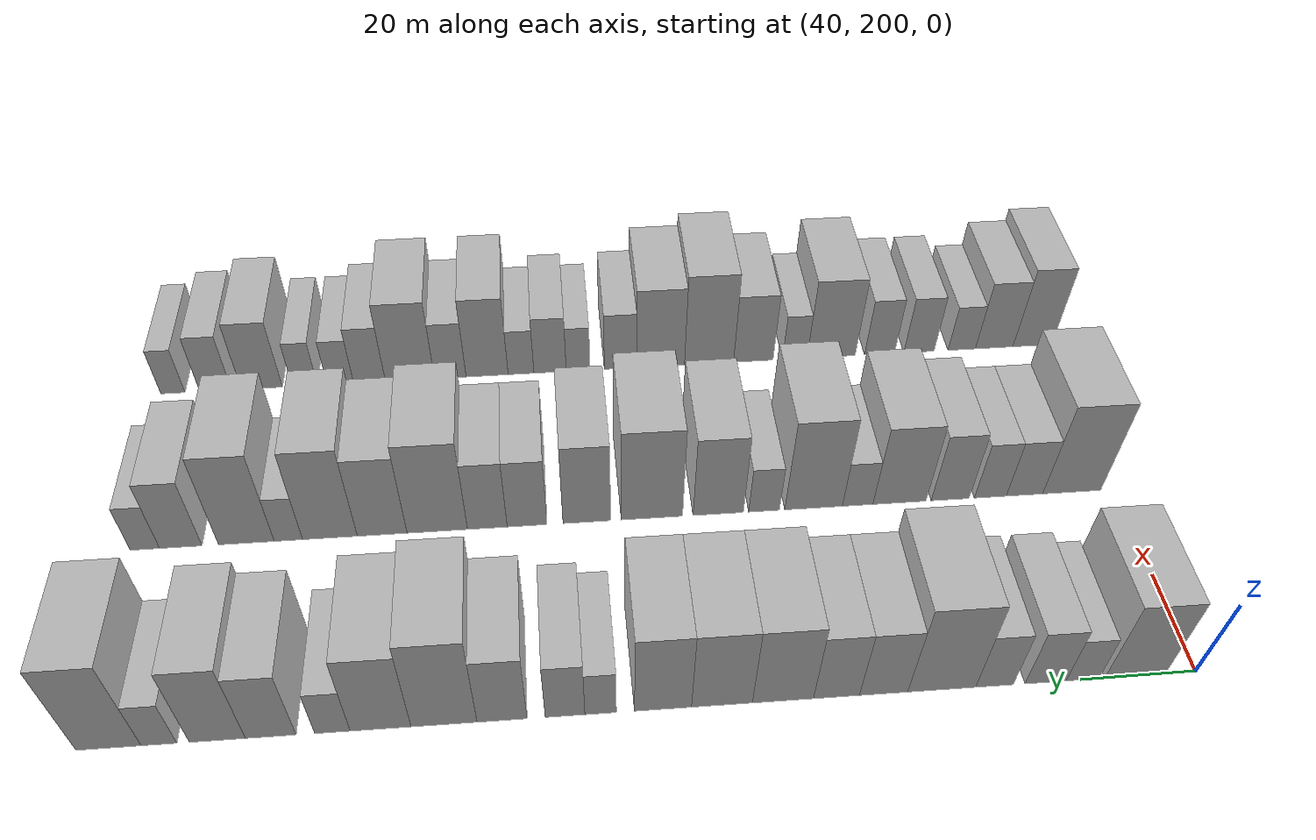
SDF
<sdf version="1.6">
 <world name="default">
  <model name="building_66">
   <static>1</static>
   <pose>50.0000 210.6346 0 0.000000 0.000000 0.000000</pose>
   <link name="link">
    <pose>0 0 10.50 0 0 0</pose>
    <collision name="collision"><geometry><box><size>20.0000 10.4875 21.0000</size></box></geometry></collision>
    <visual name="visual">
     <cast_shadows>0</cast_shadows>
     <geometry><box><size>20.0000 10.4875 21.0000</size></box></geometry>
     <material>
      <script>
       <uri>model://HANNAS_wall/materials/scripts</uri>
       <uri>model://HANNAS_wall/materials/textures</uri>
       <name>vrc/HANNAS_wall</name>
      </script>
     </material>
    </visual>
   </link>
  </model>
  <model name="building_67">
   <static>1</static>
   <pose>50.0000 219.7098 0 0.000000 0.000000 0.000000</pose>
   <link name="link">
    <pose>0 0 6.00 0 0 0</pose>
    <collision name="collision"><geometry><box><size>20.0000 5.6629 12.0000</size></box></geometry></collision>
    <visual name="visual">
     <cast_shadows>0</cast_shadows>
     <geometry><box><size>20.0000 5.6629 12.0000</size></box></geometry>
     <material>
      <script>
       <uri>model://HANNAS_wall/materials/scripts</uri>
       <uri>model://HANNAS_wall/materials/textures</uri>
       <name>vrc/HANNAS_wall</name>
      </script>
     </material>
    </visual>
   </link>
  </model>
  <model name="building_68">
   <static>1</static>
   <pose>50.0000 226.0787 0 0.000000 0.000000 0.000000</pose>
   <link name="link">
    <pose>0 0 7.50 0 0 0</pose>
    <collision name="collision"><geometry><box><size>20.0000 7.0749 15.0000</size></box></geometry></collision>
    <visual name="visual">
     <cast_shadows>0</cast_shadows>
     <geometry><box><size>20.0000 7.0749 15.0000</size></box></geometry>
     <material>
      <script>
       <uri>model://HANNAS_wall/materials/scripts</uri>
       <uri>model://HANNAS_wall/materials/textures</uri>
       <name>vrc/HANNAS_wall</name>
      </script>
     </material>
    </visual>
   </link>
  </model>
  <model name="building_69">
   <static>1</static>
   <pose>50.0000 234.8406 0 0.000000 0.000000 0.000000</pose>
   <link name="link">
    <pose>0 0 7.50 0 0 0</pose>
    <collision name="collision"><geometry><box><size>20.0000 6.4490 15.0000</size></box></geometry></collision>
    <visual name="visual">
     <cast_shadows>0</cast_shadows>
     <geometry><box><size>20.0000 6.4490 15.0000</size></box></geometry>
     <material>
      <script>
       <uri>model://HANNAS_wall/materials/scripts</uri>
       <uri>model://HANNAS_wall/materials/textures</uri>
       <name>vrc/HANNAS_wall</name>
      </script>
     </material>
    </visual>
   </link>
  </model>
  <model name="building_70">
   <static>1</static>
   <pose>50.0000 243.8585 0 0.000000 0.000000 0.000000</pose>
   <link name="link">
    <pose>0 0 12.00 0 0 0</pose>
    <collision name="collision"><geometry><box><size>20.0000 11.5869 24.0000</size></box></geometry></collision>
    <visual name="visual">
     <cast_shadows>0</cast_shadows>
     <geometry><box><size>20.0000 11.5869 24.0000</size></box></geometry>
     <material>
      <script>
       <uri>model://HANNAS_wall/materials/scripts</uri>
       <uri>model://HANNAS_wall/materials/textures</uri>
       <name>vrc/HANNAS_wall</name>
      </script>
     </material>
    </visual>
   </link>
  </model>
  <model name="building_71">
   <static>1</static>
   <pose>50.0000 253.7361 0 0.000000 0.000000 0.000000</pose>
   <link name="link">
    <pose>0 0 9.00 0 0 0</pose>
    <collision name="collision"><geometry><box><size>20.0000 8.1681 18.0000</size></box></geometry></collision>
    <visual name="visual">
     <cast_shadows>0</cast_shadows>
     <geometry><box><size>20.0000 8.1681 18.0000</size></box></geometry>
     <material>
      <script>
       <uri>model://HANNAS_wall/materials/scripts</uri>
       <uri>model://HANNAS_wall/materials/textures</uri>
       <name>vrc/HANNAS_wall</name>
      </script>
     </material>
    </visual>
   </link>
  </model>
  <model name="building_72">
   <static>1</static>
   <pose>50.0000 261.6974 0 0.000000 0.000000 0.000000</pose>
   <link name="link">
    <pose>0 0 9.00 0 0 0</pose>
    <collision name="collision"><geometry><box><size>20.0000 7.7546 18.0000</size></box></geometry></collision>
    <visual name="visual">
     <cast_shadows>0</cast_shadows>
     <geometry><box><size>20.0000 7.7546 18.0000</size></box></geometry>
     <material>
      <script>
       <uri>model://HANNAS_wall/materials/scripts</uri>
       <uri>model://HANNAS_wall/materials/textures</uri>
       <name>vrc/HANNAS_wall</name>
      </script>
     </material>
    </visual>
   </link>
  </model>
  <model name="building_73">
   <static>1</static>
   <pose>50.0000 270.7073 0 0.000000 0.000000 0.000000</pose>
   <link name="link">
    <pose>0 0 10.50 0 0 0</pose>
    <collision name="collision"><geometry><box><size>20.0000 10.2651 21.0000</size></box></geometry></collision>
    <visual name="visual">
     <cast_shadows>0</cast_shadows>
     <geometry><box><size>20.0000 10.2651 21.0000</size></box></geometry>
     <material>
      <script>
       <uri>model://HANNAS_wall/materials/scripts</uri>
       <uri>model://HANNAS_wall/materials/textures</uri>
       <name>vrc/HANNAS_wall</name>
      </script>
     </material>
    </visual>
   </link>
  </model>
  <model name="building_74">
   <static>1</static>
   <pose>50.0000 280.9217 0 0.000000 0.000000 0.000000</pose>
   <link name="link">
    <pose>0 0 10.50 0 0 0</pose>
    <collision name="collision"><geometry><box><size>20.0000 10.1638 21.0000</size></box></geometry></collision>
    <visual name="visual">
     <cast_shadows>0</cast_shadows>
     <geometry><box><size>20.0000 10.1638 21.0000</size></box></geometry>
     <material>
      <script>
       <uri>model://HANNAS_wall/materials/scripts</uri>
       <uri>model://HANNAS_wall/materials/textures</uri>
       <name>vrc/HANNAS_wall</name>
      </script>
     </material>
    </visual>
   </link>
  </model>
  <model name="building_75">
   <static>1</static>
   <pose>50.0000 290.7441 0 0.000000 0.000000 0.000000</pose>
   <link name="link">
    <pose>0 0 10.50 0 0 0</pose>
    <collision name="collision"><geometry><box><size>20.0000 9.4809 21.0000</size></box></geometry></collision>
    <visual name="visual">
     <cast_shadows>0</cast_shadows>
     <geometry><box><size>20.0000 9.4809 21.0000</size></box></geometry>
     <material>
      <script>
       <uri>model://HANNAS_wall/materials/scripts</uri>
       <uri>model://HANNAS_wall/materials/textures</uri>
       <name>vrc/HANNAS_wall</name>
      </script>
     </material>
    </visual>
   </link>
  </model>
  <model name="building_76">
   <static>1</static>
   <pose>50.0000 301.0899 0 0.000000 0.000000 0.000000</pose>
   <link name="link">
    <pose>0 0 6.00 0 0 0</pose>
    <collision name="collision"><geometry><box><size>20.0000 5.2107 12.0000</size></box></geometry></collision>
    <visual name="visual">
     <cast_shadows>0</cast_shadows>
     <geometry><box><size>20.0000 5.2107 12.0000</size></box></geometry>
     <material>
      <script>
       <uri>model://HANNAS_wall/materials/scripts</uri>
       <uri>model://HANNAS_wall/materials/textures</uri>
       <name>vrc/HANNAS_wall</name>
      </script>
     </material>
    </visual>
   </link>
  </model>
  <model name="building_77">
   <static>1</static>
   <pose>50.0000 306.9525 0 0.000000 0.000000 0.000000</pose>
   <link name="link">
    <pose>0 0 7.50 0 0 0</pose>
    <collision name="collision"><geometry><box><size>20.0000 6.5145 15.0000</size></box></geometry></collision>
    <visual name="visual">
     <cast_shadows>0</cast_shadows>
     <geometry><box><size>20.0000 6.5145 15.0000</size></box></geometry>
     <material>
      <script>
       <uri>model://HANNAS_wall/materials/scripts</uri>
       <uri>model://HANNAS_wall/materials/textures</uri>
       <name>vrc/HANNAS_wall</name>
      </script>
     </material>
    </visual>
   </link>
  </model>
  <model name="building_78">
   <static>1</static>
   <pose>50.0000 317.3073 0 0.000000 0.000000 0.000000</pose>
   <link name="link">
    <pose>0 0 9.00 0 0 0</pose>
    <collision name="collision"><geometry><box><size>20.0000 8.1949 18.0000</size></box></geometry></collision>
    <visual name="visual">
     <cast_shadows>0</cast_shadows>
     <geometry><box><size>20.0000 8.1949 18.0000</size></box></geometry>
     <material>
      <script>
       <uri>model://HANNAS_wall/materials/scripts</uri>
       <uri>model://HANNAS_wall/materials/textures</uri>
       <name>vrc/HANNAS_wall</name>
      </script>
     </material>
    </visual>
   </link>
  </model>
  <model name="building_79">
   <static>1</static>
   <pose>50.0000 326.7852 0 0.000000 0.000000 0.000000</pose>
   <link name="link">
    <pose>0 0 12.00 0 0 0</pose>
    <collision name="collision"><geometry><box><size>20.0000 10.7609 24.0000</size></box></geometry></collision>
    <visual name="visual">
     <cast_shadows>0</cast_shadows>
     <geometry><box><size>20.0000 10.7609 24.0000</size></box></geometry>
     <material>
      <script>
       <uri>model://HANNAS_wall/materials/scripts</uri>
       <uri>model://HANNAS_wall/materials/textures</uri>
       <name>vrc/HANNAS_wall</name>
      </script>
     </material>
    </visual>
   </link>
  </model>
  <model name="building_80">
   <static>1</static>
   <pose>50.0000 337.1063 0 0.000000 0.000000 0.000000</pose>
   <link name="link">
    <pose>0 0 10.50 0 0 0</pose>
    <collision name="collision"><geometry><box><size>20.0000 9.8814 21.0000</size></box></geometry></collision>
    <visual name="visual">
     <cast_shadows>0</cast_shadows>
     <geometry><box><size>20.0000 9.8814 21.0000</size></box></geometry>
     <material>
      <script>
       <uri>model://HANNAS_wall/materials/scripts</uri>
       <uri>model://HANNAS_wall/materials/textures</uri>
       <name>vrc/HANNAS_wall</name>
      </script>
     </material>
    </visual>
   </link>
  </model>
  <model name="building_81">
   <static>1</static>
   <pose>50.0000 344.9108 0 0.000000 0.000000 0.000000</pose>
   <link name="link">
    <pose>0 0 6.00 0 0 0</pose>
    <collision name="collision"><geometry><box><size>20.0000 5.7277 12.0000</size></box></geometry></collision>
    <visual name="visual">
     <cast_shadows>0</cast_shadows>
     <geometry><box><size>20.0000 5.7277 12.0000</size></box></geometry>
     <material>
      <script>
       <uri>model://HANNAS_wall/materials/scripts</uri>
       <uri>model://HANNAS_wall/materials/textures</uri>
       <name>vrc/HANNAS_wall</name>
      </script>
     </material>
    </visual>
   </link>
  </model>
  <model name="building_82">
   <static>1</static>
   <pose>50.0000 354.8287 0 0.000000 0.000000 0.000000</pose>
   <link name="link">
    <pose>0 0 9.00 0 0 0</pose>
    <collision name="collision"><geometry><box><size>20.0000 8.1081 18.0000</size></box></geometry></collision>
    <visual name="visual">
     <cast_shadows>0</cast_shadows>
     <geometry><box><size>20.0000 8.1081 18.0000</size></box></geometry>
     <material>
      <script>
       <uri>model://HANNAS_wall/materials/scripts</uri>
       <uri>model://HANNAS_wall/materials/textures</uri>
       <name>vrc/HANNAS_wall</name>
      </script>
     </material>
    </visual>
   </link>
  </model>
  <model name="building_83">
   <static>1</static>
   <pose>50.0000 363.3851 0 0.000000 0.000000 0.000000</pose>
   <link name="link">
    <pose>0 0 10.50 0 0 0</pose>
    <collision name="collision"><geometry><box><size>20.0000 9.0046 21.0000</size></box></geometry></collision>
    <visual name="visual">
     <cast_shadows>0</cast_shadows>
     <geometry><box><size>20.0000 9.0046 21.0000</size></box></geometry>
     <material>
      <script>
       <uri>model://HANNAS_wall/materials/scripts</uri>
       <uri>model://HANNAS_wall/materials/textures</uri>
       <name>vrc/HANNAS_wall</name>
      </script>
     </material>
    </visual>
   </link>
  </model>
  <model name="building_84">
   <static>1</static>
   <pose>50.0000 372.7267 0 0.000000 0.000000 0.000000</pose>
   <link name="link">
    <pose>0 0 6.00 0 0 0</pose>
    <collision name="collision"><geometry><box><size>20.0000 5.6787 12.0000</size></box></geometry></collision>
    <visual name="visual">
     <cast_shadows>0</cast_shadows>
     <geometry><box><size>20.0000 5.6787 12.0000</size></box></geometry>
     <material>
      <script>
       <uri>model://HANNAS_wall/materials/scripts</uri>
       <uri>model://HANNAS_wall/materials/textures</uri>
       <name>vrc/HANNAS_wall</name>
      </script>
     </material>
    </visual>
   </link>
  </model>
  <model name="building_85">
   <static>1</static>
   <pose>50.0000 380.7363 0 0.000000 0.000000 0.000000</pose>
   <link name="link">
    <pose>0 0 12.00 0 0 0</pose>
    <collision name="collision"><geometry><box><size>20.0000 10.3403 24.0000</size></box></geometry></collision>
    <visual name="visual">
     <cast_shadows>0</cast_shadows>
     <geometry><box><size>20.0000 10.3403 24.0000</size></box></geometry>
     <material>
      <script>
       <uri>model://HANNAS_wall/materials/scripts</uri>
       <uri>model://HANNAS_wall/materials/textures</uri>
       <name>vrc/HANNAS_wall</name>
      </script>
     </material>
    </visual>
   </link>
  </model>
  <model name="building_150">
   <static>1</static>
   <pose>90.0000 208.3253 0 0.000000 0.000000 0.000000</pose>
   <link name="link">
    <pose>0 0 12.00 0 0 0</pose>
    <collision name="collision"><geometry><box><size>20.0000 11.3460 24.0000</size></box></geometry></collision>
    <visual name="visual">
     <cast_shadows>0</cast_shadows>
     <geometry><box><size>20.0000 11.3460 24.0000</size></box></geometry>
     <material>
      <script>
       <uri>model://HANNAS_wall/materials/scripts</uri>
       <uri>model://HANNAS_wall/materials/textures</uri>
       <name>vrc/HANNAS_wall</name>
      </script>
     </material>
    </visual>
   </link>
  </model>
  <model name="building_151">
   <static>1</static>
   <pose>90.0000 217.5371 0 0.000000 0.000000 0.000000</pose>
   <link name="link">
    <pose>0 0 7.50 0 0 0</pose>
    <collision name="collision"><geometry><box><size>20.0000 7.0777 15.0000</size></box></geometry></collision>
    <visual name="visual">
     <cast_shadows>0</cast_shadows>
     <geometry><box><size>20.0000 7.0777 15.0000</size></box></geometry>
     <material>
      <script>
       <uri>model://HANNAS_wall/materials/scripts</uri>
       <uri>model://HANNAS_wall/materials/textures</uri>
       <name>vrc/HANNAS_wall</name>
      </script>
     </material>
    </visual>
   </link>
  </model>
  <model name="building_152">
   <static>1</static>
   <pose>90.0000 224.1730 0 0.000000 0.000000 0.000000</pose>
   <link name="link">
    <pose>0 0 7.50 0 0 0</pose>
    <collision name="collision"><geometry><box><size>20.0000 6.1941 15.0000</size></box></geometry></collision>
    <visual name="visual">
     <cast_shadows>0</cast_shadows>
     <geometry><box><size>20.0000 6.1941 15.0000</size></box></geometry>
     <material>
      <script>
       <uri>model://HANNAS_wall/materials/scripts</uri>
       <uri>model://HANNAS_wall/materials/textures</uri>
       <name>vrc/HANNAS_wall</name>
      </script>
     </material>
    </visual>
   </link>
  </model>
  <model name="building_153">
   <static>1</static>
   <pose>90.0000 231.9447 0 0.000000 0.000000 0.000000</pose>
   <link name="link">
    <pose>0 0 9.00 0 0 0</pose>
    <collision name="collision"><geometry><box><size>20.0000 7.3492 18.0000</size></box></geometry></collision>
    <visual name="visual">
     <cast_shadows>0</cast_shadows>
     <geometry><box><size>20.0000 7.3492 18.0000</size></box></geometry>
     <material>
      <script>
       <uri>model://HANNAS_wall/materials/scripts</uri>
       <uri>model://HANNAS_wall/materials/textures</uri>
       <name>vrc/HANNAS_wall</name>
      </script>
     </material>
    </visual>
   </link>
  </model>
  <model name="building_154">
   <static>1</static>
   <pose>90.0000 241.7229 0 0.000000 0.000000 0.000000</pose>
   <link name="link">
    <pose>0 0 10.50 0 0 0</pose>
    <collision name="collision"><geometry><box><size>20.0000 10.2072 21.0000</size></box></geometry></collision>
    <visual name="visual">
     <cast_shadows>0</cast_shadows>
     <geometry><box><size>20.0000 10.2072 21.0000</size></box></geometry>
     <material>
      <script>
       <uri>model://HANNAS_wall/materials/scripts</uri>
       <uri>model://HANNAS_wall/materials/textures</uri>
       <name>vrc/HANNAS_wall</name>
      </script>
     </material>
    </visual>
   </link>
  </model>
  <model name="building_155">
   <static>1</static>
   <pose>90.0000 249.7575 0 0.000000 0.000000 0.000000</pose>
   <link name="link">
    <pose>0 0 6.00 0 0 0</pose>
    <collision name="collision"><geometry><box><size>20.0000 5.8620 12.0000</size></box></geometry></collision>
    <visual name="visual">
     <cast_shadows>0</cast_shadows>
     <geometry><box><size>20.0000 5.8620 12.0000</size></box></geometry>
     <material>
      <script>
       <uri>model://HANNAS_wall/materials/scripts</uri>
       <uri>model://HANNAS_wall/materials/textures</uri>
       <name>vrc/HANNAS_wall</name>
      </script>
     </material>
    </visual>
   </link>
  </model>
  <model name="building_156">
   <static>1</static>
   <pose>90.0000 258.1956 0 0.000000 0.000000 0.000000</pose>
   <link name="link">
    <pose>0 0 12.00 0 0 0</pose>
    <collision name="collision"><geometry><box><size>20.0000 11.0141 24.0000</size></box></geometry></collision>
    <visual name="visual">
     <cast_shadows>0</cast_shadows>
     <geometry><box><size>20.0000 11.0141 24.0000</size></box></geometry>
     <material>
      <script>
       <uri>model://HANNAS_wall/materials/scripts</uri>
       <uri>model://HANNAS_wall/materials/textures</uri>
       <name>vrc/HANNAS_wall</name>
      </script>
     </material>
    </visual>
   </link>
  </model>
  <model name="building_157">
   <static>1</static>
   <pose>90.0000 267.6344 0 0.000000 0.000000 0.000000</pose>
   <link name="link">
    <pose>0 0 6.00 0 0 0</pose>
    <collision name="collision"><geometry><box><size>20.0000 5.8636 12.0000</size></box></geometry></collision>
    <visual name="visual">
     <cast_shadows>0</cast_shadows>
     <geometry><box><size>20.0000 5.8636 12.0000</size></box></geometry>
     <material>
      <script>
       <uri>model://HANNAS_wall/materials/scripts</uri>
       <uri>model://HANNAS_wall/materials/textures</uri>
       <name>vrc/HANNAS_wall</name>
      </script>
     </material>
    </visual>
   </link>
  </model>
  <model name="building_158">
   <static>1</static>
   <pose>90.0000 276.3266 0 0.000000 0.000000 0.000000</pose>
   <link name="link">
    <pose>0 0 10.50 0 0 0</pose>
    <collision name="collision"><geometry><box><size>20.0000 9.5206 21.0000</size></box></geometry></collision>
    <visual name="visual">
     <cast_shadows>0</cast_shadows>
     <geometry><box><size>20.0000 9.5206 21.0000</size></box></geometry>
     <material>
      <script>
       <uri>model://HANNAS_wall/materials/scripts</uri>
       <uri>model://HANNAS_wall/materials/textures</uri>
       <name>vrc/HANNAS_wall</name>
      </script>
     </material>
    </visual>
   </link>
  </model>
  <model name="building_159">
   <static>1</static>
   <pose>90.0000 288.8502 0 0.000000 0.000000 0.000000</pose>
   <link name="link">
    <pose>0 0 12.00 0 0 0</pose>
    <collision name="collision"><geometry><box><size>20.0000 11.5267 24.0000</size></box></geometry></collision>
    <visual name="visual">
     <cast_shadows>0</cast_shadows>
     <geometry><box><size>20.0000 11.5267 24.0000</size></box></geometry>
     <material>
      <script>
       <uri>model://HANNAS_wall/materials/scripts</uri>
       <uri>model://HANNAS_wall/materials/textures</uri>
       <name>vrc/HANNAS_wall</name>
      </script>
     </material>
    </visual>
   </link>
  </model>
  <model name="building_160">
   <static>1</static>
   <pose>90.0000 301.0694 0 0.000000 0.000000 0.000000</pose>
   <link name="link">
    <pose>0 0 10.50 0 0 0</pose>
    <collision name="collision"><geometry><box><size>20.0000 8.9117 21.0000</size></box></geometry></collision>
    <visual name="visual">
     <cast_shadows>0</cast_shadows>
     <geometry><box><size>20.0000 8.9117 21.0000</size></box></geometry>
     <material>
      <script>
       <uri>model://HANNAS_wall/materials/scripts</uri>
       <uri>model://HANNAS_wall/materials/textures</uri>
       <name>vrc/HANNAS_wall</name>
      </script>
     </material>
    </visual>
   </link>
  </model>
  <model name="building_161">
   <static>1</static>
   <pose>90.0000 312.2325 0 0.000000 0.000000 0.000000</pose>
   <link name="link">
    <pose>0 0 9.00 0 0 0</pose>
    <collision name="collision"><geometry><box><size>20.0000 7.4145 18.0000</size></box></geometry></collision>
    <visual name="visual">
     <cast_shadows>0</cast_shadows>
     <geometry><box><size>20.0000 7.4145 18.0000</size></box></geometry>
     <material>
      <script>
       <uri>model://HANNAS_wall/materials/scripts</uri>
       <uri>model://HANNAS_wall/materials/textures</uri>
       <name>vrc/HANNAS_wall</name>
      </script>
     </material>
    </visual>
   </link>
  </model>
  <model name="building_162">
   <static>1</static>
   <pose>90.0000 319.6227 0 0.000000 0.000000 0.000000</pose>
   <link name="link">
    <pose>0 0 9.00 0 0 0</pose>
    <collision name="collision"><geometry><box><size>20.0000 7.3660 18.0000</size></box></geometry></collision>
    <visual name="visual">
     <cast_shadows>0</cast_shadows>
     <geometry><box><size>20.0000 7.3660 18.0000</size></box></geometry>
     <material>
      <script>
       <uri>model://HANNAS_wall/materials/scripts</uri>
       <uri>model://HANNAS_wall/materials/textures</uri>
       <name>vrc/HANNAS_wall</name>
      </script>
     </material>
    </visual>
   </link>
  </model>
  <model name="building_163">
   <static>1</static>
   <pose>90.0000 328.8922 0 0.000000 0.000000 0.000000</pose>
   <link name="link">
    <pose>0 0 12.00 0 0 0</pose>
    <collision name="collision"><geometry><box><size>20.0000 11.1730 24.0000</size></box></geometry></collision>
    <visual name="visual">
     <cast_shadows>0</cast_shadows>
     <geometry><box><size>20.0000 11.1730 24.0000</size></box></geometry>
     <material>
      <script>
       <uri>model://HANNAS_wall/materials/scripts</uri>
       <uri>model://HANNAS_wall/materials/textures</uri>
       <name>vrc/HANNAS_wall</name>
      </script>
     </material>
    </visual>
   </link>
  </model>
  <model name="building_164">
   <static>1</static>
   <pose>90.0000 339.0551 0 0.000000 0.000000 0.000000</pose>
   <link name="link">
    <pose>0 0 10.50 0 0 0</pose>
    <collision name="collision"><geometry><box><size>20.0000 9.1526 21.0000</size></box></geometry></collision>
    <visual name="visual">
     <cast_shadows>0</cast_shadows>
     <geometry><box><size>20.0000 9.1526 21.0000</size></box></geometry>
     <material>
      <script>
       <uri>model://HANNAS_wall/materials/scripts</uri>
       <uri>model://HANNAS_wall/materials/textures</uri>
       <name>vrc/HANNAS_wall</name>
      </script>
     </material>
    </visual>
   </link>
  </model>
  <model name="building_165">
   <static>1</static>
   <pose>90.0000 348.6371 0 0.000000 0.000000 0.000000</pose>
   <link name="link">
    <pose>0 0 12.00 0 0 0</pose>
    <collision name="collision"><geometry><box><size>20.0000 10.0115 24.0000</size></box></geometry></collision>
    <visual name="visual">
     <cast_shadows>0</cast_shadows>
     <geometry><box><size>20.0000 10.0115 24.0000</size></box></geometry>
     <material>
      <script>
       <uri>model://HANNAS_wall/materials/scripts</uri>
       <uri>model://HANNAS_wall/materials/textures</uri>
       <name>vrc/HANNAS_wall</name>
      </script>
     </material>
    </visual>
   </link>
  </model>
  <model name="building_166">
   <static>1</static>
   <pose>90.0000 356.2366 0 0.000000 0.000000 0.000000</pose>
   <link name="link">
    <pose>0 0 6.00 0 0 0</pose>
    <collision name="collision"><geometry><box><size>20.0000 5.1875 12.0000</size></box></geometry></collision>
    <visual name="visual">
     <cast_shadows>0</cast_shadows>
     <geometry><box><size>20.0000 5.1875 12.0000</size></box></geometry>
     <material>
      <script>
       <uri>model://HANNAS_wall/materials/scripts</uri>
       <uri>model://HANNAS_wall/materials/textures</uri>
       <name>vrc/HANNAS_wall</name>
      </script>
     </material>
    </visual>
   </link>
  </model>
  <model name="building_167">
   <static>1</static>
   <pose>90.0000 363.9018 0 0.000000 0.000000 0.000000</pose>
   <link name="link">
    <pose>0 0 12.00 0 0 0</pose>
    <collision name="collision"><geometry><box><size>20.0000 10.1429 24.0000</size></box></geometry></collision>
    <visual name="visual">
     <cast_shadows>0</cast_shadows>
     <geometry><box><size>20.0000 10.1429 24.0000</size></box></geometry>
     <material>
      <script>
       <uri>model://HANNAS_wall/materials/scripts</uri>
       <uri>model://HANNAS_wall/materials/textures</uri>
       <name>vrc/HANNAS_wall</name>
      </script>
     </material>
    </visual>
   </link>
  </model>
  <model name="building_168">
   <static>1</static>
   <pose>90.0000 375.8147 0 0.000000 0.000000 0.000000</pose>
   <link name="link">
    <pose>0 0 9.00 0 0 0</pose>
    <collision name="collision"><geometry><box><size>20.0000 7.6829 18.0000</size></box></geometry></collision>
    <visual name="visual">
     <cast_shadows>0</cast_shadows>
     <geometry><box><size>20.0000 7.6829 18.0000</size></box></geometry>
     <material>
      <script>
       <uri>model://HANNAS_wall/materials/scripts</uri>
       <uri>model://HANNAS_wall/materials/textures</uri>
       <name>vrc/HANNAS_wall</name>
      </script>
     </material>
    </visual>
   </link>
  </model>
  <model name="building_169">
   <static>1</static>
   <pose>90.0000 382.2963 0 0.000000 0.000000 0.000000</pose>
   <link name="link">
    <pose>0 0 6.00 0 0 0</pose>
    <collision name="collision"><geometry><box><size>20.0000 5.2803 12.0000</size></box></geometry></collision>
    <visual name="visual">
     <cast_shadows>0</cast_shadows>
     <geometry><box><size>20.0000 5.2803 12.0000</size></box></geometry>
     <material>
      <script>
       <uri>model://HANNAS_wall/materials/scripts</uri>
       <uri>model://HANNAS_wall/materials/textures</uri>
       <name>vrc/HANNAS_wall</name>
      </script>
     </material>
    </visual>
   </link>
  </model>
  <model name="building_231">
   <static>1</static>
   <pose>130.0000 203.6872 0 0.000000 0.000000 0.000000</pose>
   <link name="link">
    <pose>0 0 10.50 0 0 0</pose>
    <collision name="collision"><geometry><box><size>20.0000 8.4527 21.0000</size></box></geometry></collision>
    <visual name="visual">
     <cast_shadows>0</cast_shadows>
     <geometry><box><size>20.0000 8.4527 21.0000</size></box></geometry>
     <material>
      <script>
       <uri>model://HANNAS_wall/materials/scripts</uri>
       <uri>model://HANNAS_wall/materials/textures</uri>
       <name>vrc/HANNAS_wall</name>
      </script>
     </material>
    </visual>
   </link>
  </model>
  <model name="building_232">
   <static>1</static>
   <pose>130.0000 211.9759 0 0.000000 0.000000 0.000000</pose>
   <link name="link">
    <pose>0 0 9.00 0 0 0</pose>
    <collision name="collision"><geometry><box><size>20.0000 8.1248 18.0000</size></box></geometry></collision>
    <visual name="visual">
     <cast_shadows>0</cast_shadows>
     <geometry><box><size>20.0000 8.1248 18.0000</size></box></geometry>
     <material>
      <script>
       <uri>model://HANNAS_wall/materials/scripts</uri>
       <uri>model://HANNAS_wall/materials/textures</uri>
       <name>vrc/HANNAS_wall</name>
      </script>
     </material>
    </visual>
   </link>
  </model>
  <model name="building_233">
   <static>1</static>
   <pose>130.0000 218.9965 0 0.000000 0.000000 0.000000</pose>
   <link name="link">
    <pose>0 0 6.00 0 0 0</pose>
    <collision name="collision"><geometry><box><size>20.0000 5.9165 12.0000</size></box></geometry></collision>
    <visual name="visual">
     <cast_shadows>0</cast_shadows>
     <geometry><box><size>20.0000 5.9165 12.0000</size></box></geometry>
     <material>
      <script>
       <uri>model://HANNAS_wall/materials/scripts</uri>
       <uri>model://HANNAS_wall/materials/textures</uri>
       <name>vrc/HANNAS_wall</name>
      </script>
     </material>
    </visual>
   </link>
  </model>
  <model name="building_234">
   <static>1</static>
   <pose>130.0000 228.2255 0 0.000000 0.000000 0.000000</pose>
   <link name="link">
    <pose>0 0 7.50 0 0 0</pose>
    <collision name="collision"><geometry><box><size>20.0000 6.5415 15.0000</size></box></geometry></collision>
    <visual name="visual">
     <cast_shadows>0</cast_shadows>
     <geometry><box><size>20.0000 6.5415 15.0000</size></box></geometry>
     <material>
      <script>
       <uri>model://HANNAS_wall/materials/scripts</uri>
       <uri>model://HANNAS_wall/materials/textures</uri>
       <name>vrc/HANNAS_wall</name>
      </script>
     </material>
    </visual>
   </link>
  </model>
  <model name="building_235">
   <static>1</static>
   <pose>130.0000 236.7145 0 0.000000 0.000000 0.000000</pose>
   <link name="link">
    <pose>0 0 7.50 0 0 0</pose>
    <collision name="collision"><geometry><box><size>20.0000 6.4365 15.0000</size></box></geometry></collision>
    <visual name="visual">
     <cast_shadows>0</cast_shadows>
     <geometry><box><size>20.0000 6.4365 15.0000</size></box></geometry>
     <material>
      <script>
       <uri>model://HANNAS_wall/materials/scripts</uri>
       <uri>model://HANNAS_wall/materials/textures</uri>
       <name>vrc/HANNAS_wall</name>
      </script>
     </material>
    </visual>
   </link>
  </model>
  <model name="building_236">
   <static>1</static>
   <pose>130.0000 247.0980 0 0.000000 0.000000 0.000000</pose>
   <link name="link">
    <pose>0 0 10.50 0 0 0</pose>
    <collision name="collision"><geometry><box><size>20.0000 10.3305 21.0000</size></box></geometry></collision>
    <visual name="visual">
     <cast_shadows>0</cast_shadows>
     <geometry><box><size>20.0000 10.3305 21.0000</size></box></geometry>
     <material>
      <script>
       <uri>model://HANNAS_wall/materials/scripts</uri>
       <uri>model://HANNAS_wall/materials/textures</uri>
       <name>vrc/HANNAS_wall</name>
      </script>
     </material>
    </visual>
   </link>
  </model>
  <model name="building_237">
   <static>1</static>
   <pose>130.0000 254.8758 0 0.000000 0.000000 0.000000</pose>
   <link name="link">
    <pose>0 0 6.00 0 0 0</pose>
    <collision name="collision"><geometry><box><size>20.0000 5.2250 12.0000</size></box></geometry></collision>
    <visual name="visual">
     <cast_shadows>0</cast_shadows>
     <geometry><box><size>20.0000 5.2250 12.0000</size></box></geometry>
     <material>
      <script>
       <uri>model://HANNAS_wall/materials/scripts</uri>
       <uri>model://HANNAS_wall/materials/textures</uri>
       <name>vrc/HANNAS_wall</name>
      </script>
     </material>
    </visual>
   </link>
  </model>
  <model name="building_238">
   <static>1</static>
   <pose>130.0000 263.6788 0 0.000000 0.000000 0.000000</pose>
   <link name="link">
    <pose>0 0 9.00 0 0 0</pose>
    <collision name="collision"><geometry><box><size>20.0000 8.3811 18.0000</size></box></geometry></collision>
    <visual name="visual">
     <cast_shadows>0</cast_shadows>
     <geometry><box><size>20.0000 8.3811 18.0000</size></box></geometry>
     <material>
      <script>
       <uri>model://HANNAS_wall/materials/scripts</uri>
       <uri>model://HANNAS_wall/materials/textures</uri>
       <name>vrc/HANNAS_wall</name>
      </script>
     </material>
    </visual>
   </link>
  </model>
  <model name="building_239">
   <static>1</static>
   <pose>130.0000 273.0698 0 0.000000 0.000000 0.000000</pose>
   <link name="link">
    <pose>0 0 12.00 0 0 0</pose>
    <collision name="collision"><geometry><box><size>20.0000 10.4010 24.0000</size></box></geometry></collision>
    <visual name="visual">
     <cast_shadows>0</cast_shadows>
     <geometry><box><size>20.0000 10.4010 24.0000</size></box></geometry>
     <material>
      <script>
       <uri>model://HANNAS_wall/materials/scripts</uri>
       <uri>model://HANNAS_wall/materials/textures</uri>
       <name>vrc/HANNAS_wall</name>
      </script>
     </material>
    </visual>
   </link>
  </model>
  <model name="building_240">
   <static>1</static>
   <pose>130.0000 283.3175 0 0.000000 0.000000 0.000000</pose>
   <link name="link">
    <pose>0 0 10.50 0 0 0</pose>
    <collision name="collision"><geometry><box><size>20.0000 10.0944 21.0000</size></box></geometry></collision>
    <visual name="visual">
     <cast_shadows>0</cast_shadows>
     <geometry><box><size>20.0000 10.0944 21.0000</size></box></geometry>
     <material>
      <script>
       <uri>model://HANNAS_wall/materials/scripts</uri>
       <uri>model://HANNAS_wall/materials/textures</uri>
       <name>vrc/HANNAS_wall</name>
      </script>
     </material>
    </visual>
   </link>
  </model>
  <model name="building_241">
   <static>1</static>
   <pose>130.0000 291.7438 0 0.000000 0.000000 0.000000</pose>
   <link name="link">
    <pose>0 0 7.50 0 0 0</pose>
    <collision name="collision"><geometry><box><size>20.0000 6.7582 15.0000</size></box></geometry></collision>
    <visual name="visual">
     <cast_shadows>0</cast_shadows>
     <geometry><box><size>20.0000 6.7582 15.0000</size></box></geometry>
     <material>
      <script>
       <uri>model://HANNAS_wall/materials/scripts</uri>
       <uri>model://HANNAS_wall/materials/textures</uri>
       <name>vrc/HANNAS_wall</name>
      </script>
     </material>
    </visual>
   </link>
  </model>
  <model name="building_242">
   <static>1</static>
   <pose>130.0000 300.6175 0 0.000000 0.000000 0.000000</pose>
   <link name="link">
    <pose>0 0 6.00 0 0 0</pose>
    <collision name="collision"><geometry><box><size>20.0000 4.9892 12.0000</size></box></geometry></collision>
    <visual name="visual">
     <cast_shadows>0</cast_shadows>
     <geometry><box><size>20.0000 4.9892 12.0000</size></box></geometry>
     <material>
      <script>
       <uri>model://HANNAS_wall/materials/scripts</uri>
       <uri>model://HANNAS_wall/materials/textures</uri>
       <name>vrc/HANNAS_wall</name>
      </script>
     </material>
    </visual>
   </link>
  </model>
  <model name="building_243">
   <static>1</static>
   <pose>130.0000 306.4812 0 0.000000 0.000000 0.000000</pose>
   <link name="link">
    <pose>0 0 7.50 0 0 0</pose>
    <collision name="collision"><geometry><box><size>20.0000 6.7381 15.0000</size></box></geometry></collision>
    <visual name="visual">
     <cast_shadows>0</cast_shadows>
     <geometry><box><size>20.0000 6.7381 15.0000</size></box></geometry>
     <material>
      <script>
       <uri>model://HANNAS_wall/materials/scripts</uri>
       <uri>model://HANNAS_wall/materials/textures</uri>
       <name>vrc/HANNAS_wall</name>
      </script>
     </material>
    </visual>
   </link>
  </model>
  <model name="building_244">
   <static>1</static>
   <pose>130.0000 312.5304 0 0.000000 0.000000 0.000000</pose>
   <link name="link">
    <pose>0 0 6.00 0 0 0</pose>
    <collision name="collision"><geometry><box><size>20.0000 5.3604 12.0000</size></box></geometry></collision>
    <visual name="visual">
     <cast_shadows>0</cast_shadows>
     <geometry><box><size>20.0000 5.3604 12.0000</size></box></geometry>
     <material>
      <script>
       <uri>model://HANNAS_wall/materials/scripts</uri>
       <uri>model://HANNAS_wall/materials/textures</uri>
       <name>vrc/HANNAS_wall</name>
      </script>
     </material>
    </visual>
   </link>
  </model>
  <model name="building_245">
   <static>1</static>
   <pose>130.0000 319.5748 0 0.000000 0.000000 0.000000</pose>
   <link name="link">
    <pose>0 0 10.50 0 0 0</pose>
    <collision name="collision"><geometry><box><size>20.0000 8.7284 21.0000</size></box></geometry></collision>
    <visual name="visual">
     <cast_shadows>0</cast_shadows>
     <geometry><box><size>20.0000 8.7284 21.0000</size></box></geometry>
     <material>
      <script>
       <uri>model://HANNAS_wall/materials/scripts</uri>
       <uri>model://HANNAS_wall/materials/textures</uri>
       <name>vrc/HANNAS_wall</name>
      </script>
     </material>
    </visual>
   </link>
  </model>
  <model name="building_246">
   <static>1</static>
   <pose>130.0000 327.2056 0 0.000000 0.000000 0.000000</pose>
   <link name="link">
    <pose>0 0 7.50 0 0 0</pose>
    <collision name="collision"><geometry><box><size>20.0000 6.5332 15.0000</size></box></geometry></collision>
    <visual name="visual">
     <cast_shadows>0</cast_shadows>
     <geometry><box><size>20.0000 6.5332 15.0000</size></box></geometry>
     <material>
      <script>
       <uri>model://HANNAS_wall/materials/scripts</uri>
       <uri>model://HANNAS_wall/materials/textures</uri>
       <name>vrc/HANNAS_wall</name>
      </script>
     </material>
    </visual>
   </link>
  </model>
  <model name="building_247">
   <static>1</static>
   <pose>130.0000 335.5440 0 0.000000 0.000000 0.000000</pose>
   <link name="link">
    <pose>0 0 10.50 0 0 0</pose>
    <collision name="collision"><geometry><box><size>20.0000 10.1436 21.0000</size></box></geometry></collision>
    <visual name="visual">
     <cast_shadows>0</cast_shadows>
     <geometry><box><size>20.0000 10.1436 21.0000</size></box></geometry>
     <material>
      <script>
       <uri>model://HANNAS_wall/materials/scripts</uri>
       <uri>model://HANNAS_wall/materials/textures</uri>
       <name>vrc/HANNAS_wall</name>
      </script>
     </material>
    </visual>
   </link>
  </model>
  <model name="building_248">
   <static>1</static>
   <pose>130.0000 343.8867 0 0.000000 0.000000 0.000000</pose>
   <link name="link">
    <pose>0 0 7.50 0 0 0</pose>
    <collision name="collision"><geometry><box><size>20.0000 6.5417 15.0000</size></box></geometry></collision>
    <visual name="visual">
     <cast_shadows>0</cast_shadows>
     <geometry><box><size>20.0000 6.5417 15.0000</size></box></geometry>
     <material>
      <script>
       <uri>model://HANNAS_wall/materials/scripts</uri>
       <uri>model://HANNAS_wall/materials/textures</uri>
       <name>vrc/HANNAS_wall</name>
      </script>
     </material>
    </visual>
   </link>
  </model>
  <model name="building_249">
   <static>1</static>
   <pose>130.0000 349.8684 0 0.000000 0.000000 0.000000</pose>
   <link name="link">
    <pose>0 0 6.00 0 0 0</pose>
    <collision name="collision"><geometry><box><size>20.0000 5.4217 12.0000</size></box></geometry></collision>
    <visual name="visual">
     <cast_shadows>0</cast_shadows>
     <geometry><box><size>20.0000 5.4217 12.0000</size></box></geometry>
     <material>
      <script>
       <uri>model://HANNAS_wall/materials/scripts</uri>
       <uri>model://HANNAS_wall/materials/textures</uri>
       <name>vrc/HANNAS_wall</name>
      </script>
     </material>
    </visual>
   </link>
  </model>
  <model name="building_250">
   <static>1</static>
   <pose>130.0000 357.1449 0 0.000000 0.000000 0.000000</pose>
   <link name="link">
    <pose>0 0 6.00 0 0 0</pose>
    <collision name="collision"><geometry><box><size>20.0000 5.1313 12.0000</size></box></geometry></collision>
    <visual name="visual">
     <cast_shadows>0</cast_shadows>
     <geometry><box><size>20.0000 5.1313 12.0000</size></box></geometry>
     <material>
      <script>
       <uri>model://HANNAS_wall/materials/scripts</uri>
       <uri>model://HANNAS_wall/materials/textures</uri>
       <name>vrc/HANNAS_wall</name>
      </script>
     </material>
    </visual>
   </link>
  </model>
  <model name="building_251">
   <static>1</static>
   <pose>130.0000 365.9073 0 0.000000 0.000000 0.000000</pose>
   <link name="link">
    <pose>0 0 9.00 0 0 0</pose>
    <collision name="collision"><geometry><box><size>20.0000 8.3935 18.0000</size></box></geometry></collision>
    <visual name="visual">
     <cast_shadows>0</cast_shadows>
     <geometry><box><size>20.0000 8.3935 18.0000</size></box></geometry>
     <material>
      <script>
       <uri>model://HANNAS_wall/materials/scripts</uri>
       <uri>model://HANNAS_wall/materials/textures</uri>
       <name>vrc/HANNAS_wall</name>
      </script>
     </material>
    </visual>
   </link>
  </model>
  <model name="building_252">
   <static>1</static>
   <pose>130.0000 375.3130 0 0.000000 0.000000 0.000000</pose>
   <link name="link">
    <pose>0 0 7.50 0 0 0</pose>
    <collision name="collision"><geometry><box><size>20.0000 6.4180 15.0000</size></box></geometry></collision>
    <visual name="visual">
     <cast_shadows>0</cast_shadows>
     <geometry><box><size>20.0000 6.4180 15.0000</size></box></geometry>
     <material>
      <script>
       <uri>model://HANNAS_wall/materials/scripts</uri>
       <uri>model://HANNAS_wall/materials/textures</uri>
       <name>vrc/HANNAS_wall</name>
      </script>
     </material>
    </visual>
   </link>
  </model>
  <model name="building_253">
   <static>1</static>
   <pose>130.0000 383.9680 0 0.000000 0.000000 0.000000</pose>
   <link name="link">
    <pose>0 0 6.00 0 0 0</pose>
    <collision name="collision"><geometry><box><size>20.0000 4.8921 12.0000</size></box></geometry></collision>
    <visual name="visual">
     <cast_shadows>0</cast_shadows>
     <geometry><box><size>20.0000 4.8921 12.0000</size></box></geometry>
     <material>
      <script>
       <uri>model://HANNAS_wall/materials/scripts</uri>
       <uri>model://HANNAS_wall/materials/textures</uri>
       <name>vrc/HANNAS_wall</name>
      </script>
     </material>
    </visual>
   </link>
  </model>
 </world>
</sdf>
